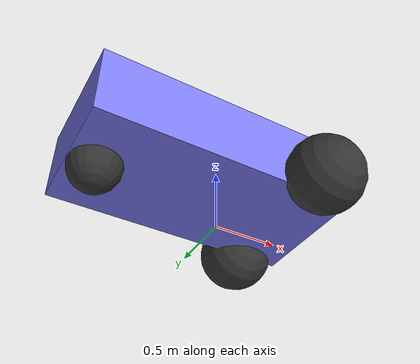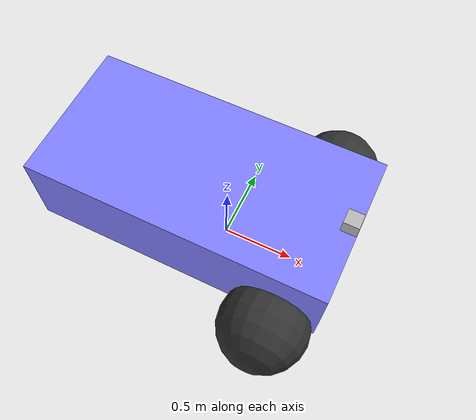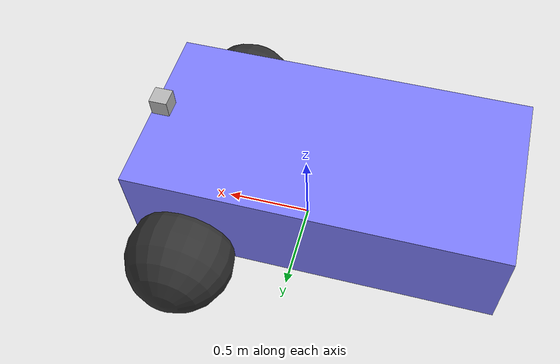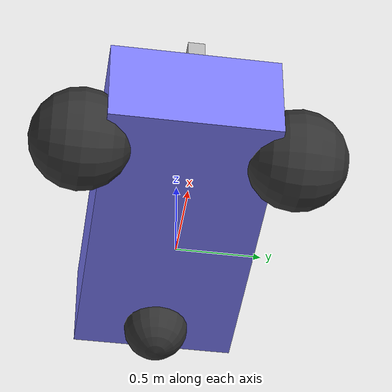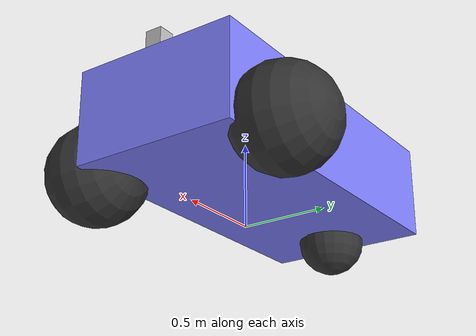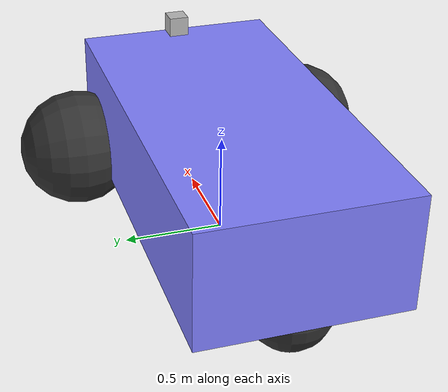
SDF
<?xml version="1.0" ?>
<sdf version="1.8">
  <model name='vehicle'>
    <self_collide>true</self_collide>
    <pose>0 0 0.3 0 0 0</pose>
    <link name='chassis'>
      <pose>-0.151427 -0 0.175 0 -0 0</pose>

      <inertial>
        <mass>1.14395</mass>
        <inertia>
          <ixx>0.126164</ixx>
          <ixy>0</ixy>
          <ixz>0</ixz>
          <iyy>0.416519</iyy>
          <iyz>0</iyz>
          <izz>0.481014</izz>
        </inertia>
      </inertial>
      <visual name='visual_chassis'>
        <geometry>
          <box>
            <size>2.01142 1 0.568726</size>
          </box>
        </geometry>
        <material>
          <ambient>0.5 0.5 1.0 1</ambient>
          <diffuse>0.5 0.5 1.0 1</diffuse>
          <specular>0.0 0.0 1.0 1</specular>
        </material>
      </visual>
      <collision name='collision_chassis'>
        <geometry>
          <box>
            <size>2.01142 1 0.568726</size>
          </box>
        </geometry>
      </collision>
    </link>

    <link name='left_wheel'>
      <pose>0.554283 0.625029 -0.025 -1.5707 0 0</pose>
      <inertial>
        <mass>2</mass>
        <inertia>
          <ixx>0.145833</ixx>
          <ixy>0</ixy>
          <ixz>0</ixz>
          <iyy>0.145833</iyy>
          <iyz>0</iyz>
          <izz>0.125</izz>
        </inertia>
      </inertial>
      <visual name='visual_left_wheel'>
        <geometry>
          <sphere>
            <radius>0.3</radius>
          </sphere>
        </geometry>
        <material>
          <ambient>0.2 0.2 0.2 1</ambient>
          <diffuse>0.2 0.2 0.2 1</diffuse>
          <specular>0.2 0.2 0.2 1</specular>
        </material>
      </visual>
      <collision name='collision_left_wheel'>
        <geometry>
          <sphere>
            <radius>0.3</radius>
          </sphere>
        </geometry>
      </collision>
    </link>

    <link name='right_wheel'>
      <pose>0.554282 -0.625029 -0.025 -1.5707 0 0</pose>
      <inertial>
        <mass>2</mass>
        <inertia>
          <ixx>0.145833</ixx>
          <ixy>0</ixy>
          <ixz>0</ixz>
          <iyy>0.145833</iyy>
          <iyz>0</iyz>
          <izz>0.125</izz>
        </inertia>
      </inertial>
      <visual name='visual_right_wheel'>
        <geometry>
          <sphere>
            <radius>0.3</radius>
          </sphere>
        </geometry>
        <material>
          <ambient>0.2 0.2 0.2 1</ambient>
          <diffuse>0.2 0.2 0.2 1</diffuse>
          <specular>0.2 0.2 0.2 1</specular>
        </material>
      </visual>
      <collision name='collision_right_wheel'>
        <geometry>
          <sphere>
            <radius>0.3</radius>
          </sphere>
        </geometry>
      </collision>
    </link>

    <link name='caster'>
      <pose>-0.957138 -0 -0.125 0 -0 0</pose>
      <inertial>
        <mass>1</mass>
        <inertia>
          <ixx>0.1</ixx>
          <ixy>0</ixy>
          <ixz>0</ixz>
          <iyy>0.1</iyy>
          <iyz>0</iyz>
          <izz>0.1</izz>
        </inertia>
      </inertial>
      <visual name='visual_caster'>
        <geometry>
          <sphere>
            <radius>0.2</radius>
          </sphere>
        </geometry>
        <material>
          <ambient>0.2 0.2 0.2 1</ambient>
          <diffuse>0.2 0.2 0.2 1</diffuse>
          <specular>0.2 0.2 0.2 1</specular>
        </material>
      </visual>
      <collision name='collision_caster'>
        <geometry>
          <sphere>
            <radius>0.2</radius>
          </sphere>
        </geometry>
      </collision>
    </link>

    <link name="lidar_link">
      <pose>0.8 0.0 0.51 0 0 0</pose>
      <inertial>
        <mass>0.1</mass>
        <inertia>
          <ixx>0.000166667</ixx>
          <iyy>0.000166667</iyy>
          <izz>0.000166667</izz>
        </inertia>
      </inertial>
      <collision name="collision">
        <geometry>
          <box>
            <size>0.1 0.1 0.1</size>
          </box>
        </geometry>
      </collision>
      <visual name="visual">
        <geometry>
          <box>
            <size>0.1 0.1 0.1</size>
          </box>
        </geometry>
      </visual>

      <sensor name='gpu_lidar' type='gpu_lidar'>
        <topic>lidar</topic>
        <update_rate>10</update_rate>
        <ignition_frame_id>lidar_link</ignition_frame_id>
        <lidar>
          <scan>
            <horizontal>
              <samples>640</samples>
              <resolution>1</resolution>
              <min_angle>-1.396263</min_angle>
              <max_angle>1.396263</max_angle>
            </horizontal>
            <vertical>
              <samples>16</samples>
              <resolution>1</resolution>
              <min_angle>-0.261799</min_angle>
              <max_angle>0.261799</max_angle>
            </vertical>
          </scan>
          <range>
            <min>0.08</min>
            <max>10.0</max>
            <resolution>0.01</resolution>
          </range>
        </lidar>
        <alwaysOn>1</alwaysOn>
        <visualize>true</visualize>
      </sensor>
    </link>

    <joint name='left_wheel_joint' type='revolute'>
      <parent>chassis</parent>
      <child>left_wheel</child>
      <pose>0 0.0 0 0 0 0</pose>
      <axis>
        <xyz>0 0 1</xyz>
      </axis>
    </joint>

    <joint name='right_wheel_joint' type='revolute'>
      <parent>chassis</parent>
      <child>right_wheel</child>
      <pose>0 0.0 0 0 0 0</pose>
      <axis>
        <xyz>0 0 1</xyz>
      </axis>
    </joint>

    <joint name='caster_wheel' type='fixed'>
      <parent>chassis</parent>
      <child>caster</child>
    </joint>

    <joint name='lidar_sensor' type='fixed'>
      <parent>chassis</parent>
      <child>lidar_link</child>
    </joint>

    <plugin
      filename="ignition-gazebo-diff-drive-system"
      name="ignition::gazebo::systems::DiffDrive">
      <left_joint>left_wheel_joint</left_joint>
      <right_joint>right_wheel_joint</right_joint>
      <wheel_separation>1.25</wheel_separation>
      <wheel_radius>0.3</wheel_radius>
      <odom_publish_frequency>1</odom_publish_frequency>
      <max_linear_acceleration>1</max_linear_acceleration>
      <min_linear_acceleration>-1</min_linear_acceleration>
      <max_angular_acceleration>2</max_angular_acceleration>
      <min_angular_acceleration>-2</min_angular_acceleration>
      <max_linear_velocity>0.5</max_linear_velocity>
      <min_linear_velocity>-0.5</min_linear_velocity>
      <max_angular_velocity>1</max_angular_velocity>
      <min_angular_velocity>-1</min_angular_velocity>
    </plugin>

    <plugin
      filename="ignition-gazebo-joint-state-publisher-system"
      name="ignition::gazebo::systems::JointStatePublisher">
    </plugin>

    <plugin
      filename="ignition-gazebo-odometry-publisher-system"
      name="ignition::gazebo::systems::OdometryPublisher">
      <odom_frame>odom</odom_frame>
      <robot_base_frame>chassis</robot_base_frame>
    </plugin>
  </model>
</sdf>
